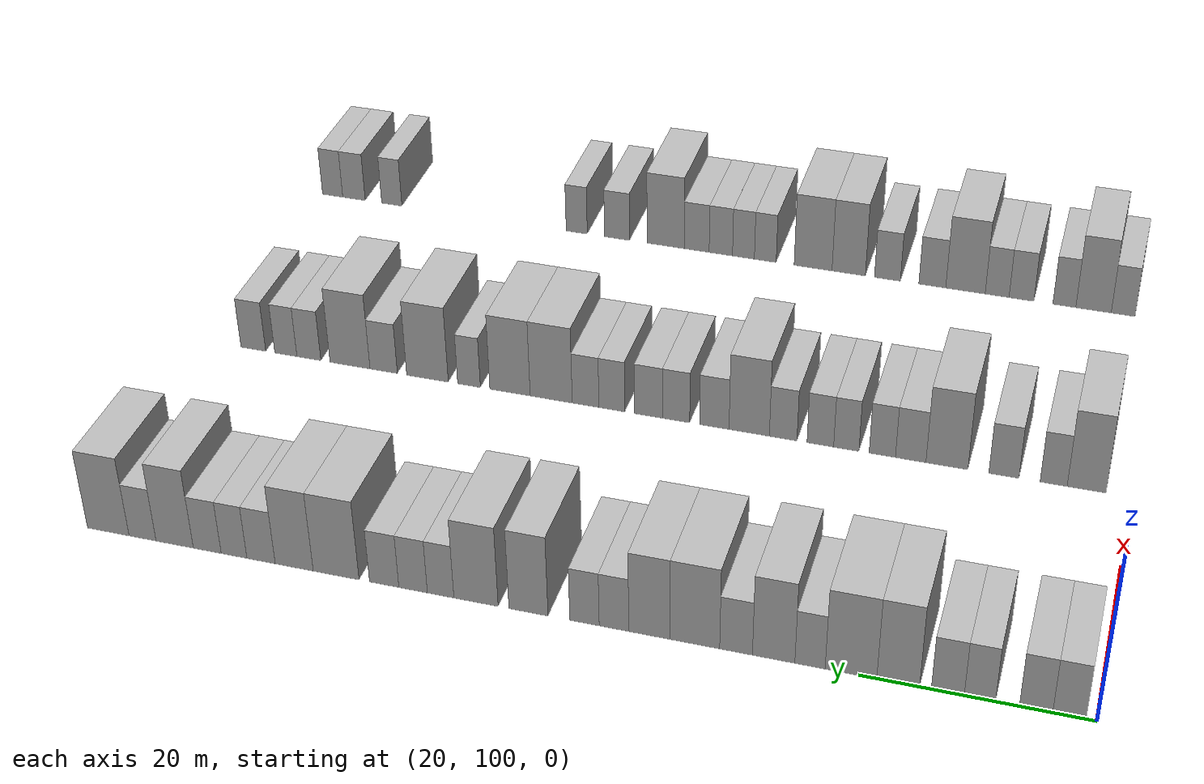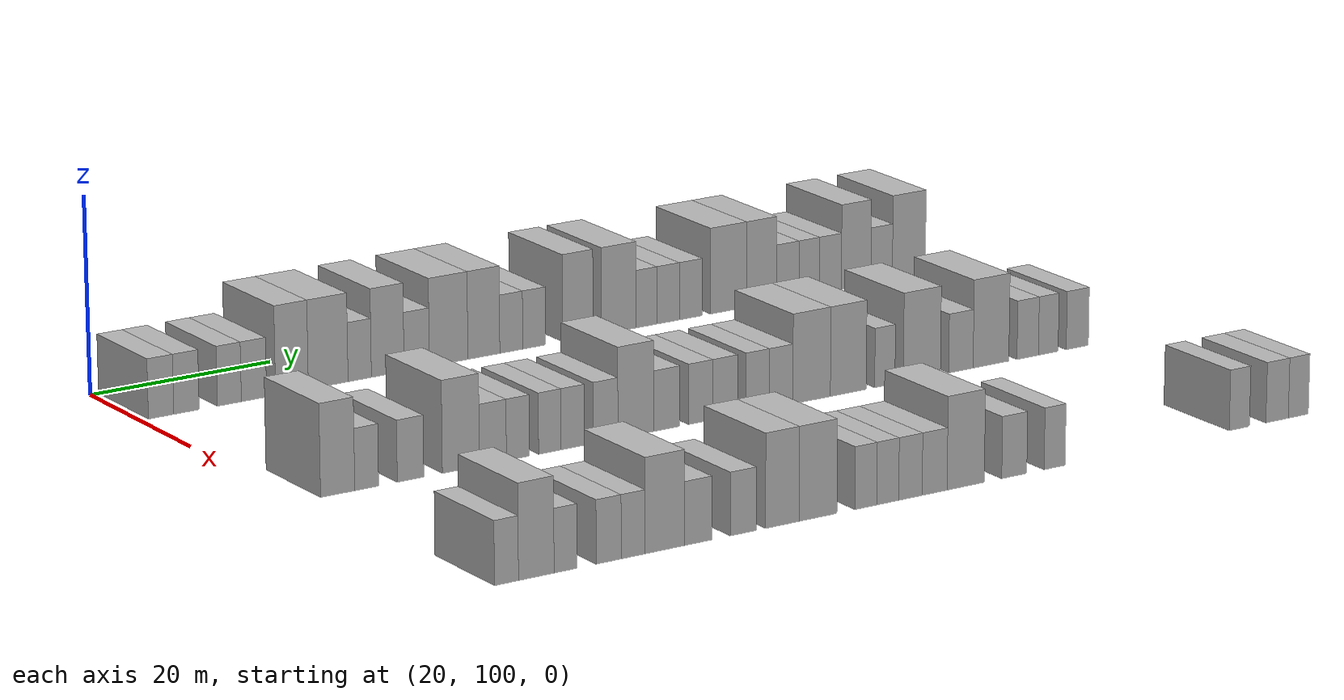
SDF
<sdf version="1.6">
 <world name="default">
  <model name="building_97">
   <static>1</static>
   <pose>25.0000 102.2993 0 0.000000 0.000000 0.000000</pose>
   <link name="link">
    <pose>0 0 3.00 0 0 0</pose>
    <collision name="collision"><geometry><box><size>10.0000 2.7549 6.0000</size></box></geometry></collision>
    <visual name="visual">
     <cast_shadows>0</cast_shadows>
     <geometry><box><size>10.0000 2.7549 6.0000</size></box></geometry>
     <material>
      <script>
       <uri>model://HANNAS_wall/materials/scripts</uri>
       <uri>model://HANNAS_wall/materials/textures</uri>
       <name>vrc/HANNAS_wall</name>
      </script>
     </material>
    </visual>
   </link>
  </model>
  <model name="building_98">
   <static>1</static>
   <pose>25.0000 105.0602 0 0.000000 0.000000 0.000000</pose>
   <link name="link">
    <pose>0 0 3.00 0 0 0</pose>
    <collision name="collision"><geometry><box><size>10.0000 2.7669 6.0000</size></box></geometry></collision>
    <visual name="visual">
     <cast_shadows>0</cast_shadows>
     <geometry><box><size>10.0000 2.7669 6.0000</size></box></geometry>
     <material>
      <script>
       <uri>model://HANNAS_wall/materials/scripts</uri>
       <uri>model://HANNAS_wall/materials/textures</uri>
       <name>vrc/HANNAS_wall</name>
      </script>
     </material>
    </visual>
   </link>
  </model>
  <model name="building_99">
   <static>1</static>
   <pose>25.0000 109.7584 0 0.000000 0.000000 0.000000</pose>
   <link name="link">
    <pose>0 0 3.00 0 0 0</pose>
    <collision name="collision"><geometry><box><size>10.0000 2.6295 6.0000</size></box></geometry></collision>
    <visual name="visual">
     <cast_shadows>0</cast_shadows>
     <geometry><box><size>10.0000 2.6295 6.0000</size></box></geometry>
     <material>
      <script>
       <uri>model://HANNAS_wall/materials/scripts</uri>
       <uri>model://HANNAS_wall/materials/textures</uri>
       <name>vrc/HANNAS_wall</name>
      </script>
     </material>
    </visual>
   </link>
  </model>
  <model name="building_100">
   <static>1</static>
   <pose>25.0000 112.4646 0 0.000000 0.000000 0.000000</pose>
   <link name="link">
    <pose>0 0 3.00 0 0 0</pose>
    <collision name="collision"><geometry><box><size>10.0000 2.7828 6.0000</size></box></geometry></collision>
    <visual name="visual">
     <cast_shadows>0</cast_shadows>
     <geometry><box><size>10.0000 2.7828 6.0000</size></box></geometry>
     <material>
      <script>
       <uri>model://HANNAS_wall/materials/scripts</uri>
       <uri>model://HANNAS_wall/materials/textures</uri>
       <name>vrc/HANNAS_wall</name>
      </script>
     </material>
    </visual>
   </link>
  </model>
  <model name="building_101">
   <static>1</static>
   <pose>25.0000 116.6821 0 0.000000 0.000000 0.000000</pose>
   <link name="link">
    <pose>0 0 4.50 0 0 0</pose>
    <collision name="collision"><geometry><box><size>10.0000 3.6521 9.0000</size></box></geometry></collision>
    <visual name="visual">
     <cast_shadows>0</cast_shadows>
     <geometry><box><size>10.0000 3.6521 9.0000</size></box></geometry>
     <material>
      <script>
       <uri>model://HANNAS_wall/materials/scripts</uri>
       <uri>model://HANNAS_wall/materials/textures</uri>
       <name>vrc/HANNAS_wall</name>
      </script>
     </material>
    </visual>
   </link>
  </model>
  <model name="building_102">
   <static>1</static>
   <pose>25.0000 120.7356 0 0.000000 0.000000 0.000000</pose>
   <link name="link">
    <pose>0 0 4.50 0 0 0</pose>
    <collision name="collision"><geometry><box><size>10.0000 4.4549 9.0000</size></box></geometry></collision>
    <visual name="visual">
     <cast_shadows>0</cast_shadows>
     <geometry><box><size>10.0000 4.4549 9.0000</size></box></geometry>
     <material>
      <script>
       <uri>model://HANNAS_wall/materials/scripts</uri>
       <uri>model://HANNAS_wall/materials/textures</uri>
       <name>vrc/HANNAS_wall</name>
      </script>
     </material>
    </visual>
   </link>
  </model>
  <model name="building_103">
   <static>1</static>
   <pose>25.0000 124.2792 0 0.000000 0.000000 0.000000</pose>
   <link name="link">
    <pose>0 0 3.00 0 0 0</pose>
    <collision name="collision"><geometry><box><size>10.0000 2.6323 6.0000</size></box></geometry></collision>
    <visual name="visual">
     <cast_shadows>0</cast_shadows>
     <geometry><box><size>10.0000 2.6323 6.0000</size></box></geometry>
     <material>
      <script>
       <uri>model://HANNAS_wall/materials/scripts</uri>
       <uri>model://HANNAS_wall/materials/textures</uri>
       <name>vrc/HANNAS_wall</name>
      </script>
     </material>
    </visual>
   </link>
  </model>
  <model name="building_104">
   <static>1</static>
   <pose>25.0000 127.4532 0 0.000000 0.000000 0.000000</pose>
   <link name="link">
    <pose>0 0 4.50 0 0 0</pose>
    <collision name="collision"><geometry><box><size>10.0000 3.7158 9.0000</size></box></geometry></collision>
    <visual name="visual">
     <cast_shadows>0</cast_shadows>
     <geometry><box><size>10.0000 3.7158 9.0000</size></box></geometry>
     <material>
      <script>
       <uri>model://HANNAS_wall/materials/scripts</uri>
       <uri>model://HANNAS_wall/materials/textures</uri>
       <name>vrc/HANNAS_wall</name>
      </script>
     </material>
    </visual>
   </link>
  </model>
  <model name="building_105">
   <static>1</static>
   <pose>25.0000 130.7575 0 0.000000 0.000000 0.000000</pose>
   <link name="link">
    <pose>0 0 3.00 0 0 0</pose>
    <collision name="collision"><geometry><box><size>10.0000 2.8928 6.0000</size></box></geometry></collision>
    <visual name="visual">
     <cast_shadows>0</cast_shadows>
     <geometry><box><size>10.0000 2.8928 6.0000</size></box></geometry>
     <material>
      <script>
       <uri>model://HANNAS_wall/materials/scripts</uri>
       <uri>model://HANNAS_wall/materials/textures</uri>
       <name>vrc/HANNAS_wall</name>
      </script>
     </material>
    </visual>
   </link>
  </model>
  <model name="building_106">
   <static>1</static>
   <pose>25.0000 134.4187 0 0.000000 0.000000 0.000000</pose>
   <link name="link">
    <pose>0 0 4.50 0 0 0</pose>
    <collision name="collision"><geometry><box><size>10.0000 4.4296 9.0000</size></box></geometry></collision>
    <visual name="visual">
     <cast_shadows>0</cast_shadows>
     <geometry><box><size>10.0000 4.4296 9.0000</size></box></geometry>
     <material>
      <script>
       <uri>model://HANNAS_wall/materials/scripts</uri>
       <uri>model://HANNAS_wall/materials/textures</uri>
       <name>vrc/HANNAS_wall</name>
      </script>
     </material>
    </visual>
   </link>
  </model>
  <model name="building_107">
   <static>1</static>
   <pose>25.0000 138.4829 0 0.000000 0.000000 0.000000</pose>
   <link name="link">
    <pose>0 0 4.50 0 0 0</pose>
    <collision name="collision"><geometry><box><size>10.0000 3.6987 9.0000</size></box></geometry></collision>
    <visual name="visual">
     <cast_shadows>0</cast_shadows>
     <geometry><box><size>10.0000 3.6987 9.0000</size></box></geometry>
     <material>
      <script>
       <uri>model://HANNAS_wall/materials/scripts</uri>
       <uri>model://HANNAS_wall/materials/textures</uri>
       <name>vrc/HANNAS_wall</name>
      </script>
     </material>
    </visual>
   </link>
  </model>
  <model name="building_108">
   <static>1</static>
   <pose>25.0000 141.6702 0 0.000000 0.000000 0.000000</pose>
   <link name="link">
    <pose>0 0 3.00 0 0 0</pose>
    <collision name="collision"><geometry><box><size>10.0000 2.6760 6.0000</size></box></geometry></collision>
    <visual name="visual">
     <cast_shadows>0</cast_shadows>
     <geometry><box><size>10.0000 2.6760 6.0000</size></box></geometry>
     <material>
      <script>
       <uri>model://HANNAS_wall/materials/scripts</uri>
       <uri>model://HANNAS_wall/materials/textures</uri>
       <name>vrc/HANNAS_wall</name>
      </script>
     </material>
    </visual>
   </link>
  </model>
  <model name="building_109">
   <static>1</static>
   <pose>25.0000 144.3447 0 0.000000 0.000000 0.000000</pose>
   <link name="link">
    <pose>0 0 3.00 0 0 0</pose>
    <collision name="collision"><geometry><box><size>10.0000 2.6730 6.0000</size></box></geometry></collision>
    <visual name="visual">
     <cast_shadows>0</cast_shadows>
     <geometry><box><size>10.0000 2.6730 6.0000</size></box></geometry>
     <material>
      <script>
       <uri>model://HANNAS_wall/materials/scripts</uri>
       <uri>model://HANNAS_wall/materials/textures</uri>
       <name>vrc/HANNAS_wall</name>
      </script>
     </material>
    </visual>
   </link>
  </model>
  <model name="building_110">
   <static>1</static>
   <pose>25.0000 149.4834 0 0.000000 0.000000 0.000000</pose>
   <link name="link">
    <pose>0 0 4.50 0 0 0</pose>
    <collision name="collision"><geometry><box><size>10.0000 3.6043 9.0000</size></box></geometry></collision>
    <visual name="visual">
     <cast_shadows>0</cast_shadows>
     <geometry><box><size>10.0000 3.6043 9.0000</size></box></geometry>
     <material>
      <script>
       <uri>model://HANNAS_wall/materials/scripts</uri>
       <uri>model://HANNAS_wall/materials/textures</uri>
       <name>vrc/HANNAS_wall</name>
      </script>
     </material>
    </visual>
   </link>
  </model>
  <model name="building_111">
   <static>1</static>
   <pose>25.0000 154.3491 0 0.000000 0.000000 0.000000</pose>
   <link name="link">
    <pose>0 0 4.50 0 0 0</pose>
    <collision name="collision"><geometry><box><size>10.0000 4.1273 9.0000</size></box></geometry></collision>
    <visual name="visual">
     <cast_shadows>0</cast_shadows>
     <geometry><box><size>10.0000 4.1273 9.0000</size></box></geometry>
     <material>
      <script>
       <uri>model://HANNAS_wall/materials/scripts</uri>
       <uri>model://HANNAS_wall/materials/textures</uri>
       <name>vrc/HANNAS_wall</name>
      </script>
     </material>
    </visual>
   </link>
  </model>
  <model name="building_112">
   <static>1</static>
   <pose>25.0000 157.6586 0 0.000000 0.000000 0.000000</pose>
   <link name="link">
    <pose>0 0 3.00 0 0 0</pose>
    <collision name="collision"><geometry><box><size>10.0000 2.4916 6.0000</size></box></geometry></collision>
    <visual name="visual">
     <cast_shadows>0</cast_shadows>
     <geometry><box><size>10.0000 2.4916 6.0000</size></box></geometry>
     <material>
      <script>
       <uri>model://HANNAS_wall/materials/scripts</uri>
       <uri>model://HANNAS_wall/materials/textures</uri>
       <name>vrc/HANNAS_wall</name>
      </script>
     </material>
    </visual>
   </link>
  </model>
  <model name="building_113">
   <static>1</static>
   <pose>25.0000 160.2516 0 0.000000 0.000000 0.000000</pose>
   <link name="link">
    <pose>0 0 3.00 0 0 0</pose>
    <collision name="collision"><geometry><box><size>10.0000 2.6944 6.0000</size></box></geometry></collision>
    <visual name="visual">
     <cast_shadows>0</cast_shadows>
     <geometry><box><size>10.0000 2.6944 6.0000</size></box></geometry>
     <material>
      <script>
       <uri>model://HANNAS_wall/materials/scripts</uri>
       <uri>model://HANNAS_wall/materials/textures</uri>
       <name>vrc/HANNAS_wall</name>
      </script>
     </material>
    </visual>
   </link>
  </model>
  <model name="building_114">
   <static>1</static>
   <pose>25.0000 162.9889 0 0.000000 0.000000 0.000000</pose>
   <link name="link">
    <pose>0 0 3.00 0 0 0</pose>
    <collision name="collision"><geometry><box><size>10.0000 2.7803 6.0000</size></box></geometry></collision>
    <visual name="visual">
     <cast_shadows>0</cast_shadows>
     <geometry><box><size>10.0000 2.7803 6.0000</size></box></geometry>
     <material>
      <script>
       <uri>model://HANNAS_wall/materials/scripts</uri>
       <uri>model://HANNAS_wall/materials/textures</uri>
       <name>vrc/HANNAS_wall</name>
      </script>
     </material>
    </visual>
   </link>
  </model>
  <model name="building_115">
   <static>1</static>
   <pose>25.0000 167.5828 0 0.000000 0.000000 0.000000</pose>
   <link name="link">
    <pose>0 0 4.50 0 0 0</pose>
    <collision name="collision"><geometry><box><size>10.0000 4.4075 9.0000</size></box></geometry></collision>
    <visual name="visual">
     <cast_shadows>0</cast_shadows>
     <geometry><box><size>10.0000 4.4075 9.0000</size></box></geometry>
     <material>
      <script>
       <uri>model://HANNAS_wall/materials/scripts</uri>
       <uri>model://HANNAS_wall/materials/textures</uri>
       <name>vrc/HANNAS_wall</name>
      </script>
     </material>
    </visual>
   </link>
  </model>
  <model name="building_116">
   <static>1</static>
   <pose>25.0000 171.6278 0 0.000000 0.000000 0.000000</pose>
   <link name="link">
    <pose>0 0 4.50 0 0 0</pose>
    <collision name="collision"><geometry><box><size>10.0000 3.6826 9.0000</size></box></geometry></collision>
    <visual name="visual">
     <cast_shadows>0</cast_shadows>
     <geometry><box><size>10.0000 3.6826 9.0000</size></box></geometry>
     <material>
      <script>
       <uri>model://HANNAS_wall/materials/scripts</uri>
       <uri>model://HANNAS_wall/materials/textures</uri>
       <name>vrc/HANNAS_wall</name>
      </script>
     </material>
    </visual>
   </link>
  </model>
  <model name="building_117">
   <static>1</static>
   <pose>25.0000 174.8508 0 0.000000 0.000000 0.000000</pose>
   <link name="link">
    <pose>0 0 3.00 0 0 0</pose>
    <collision name="collision"><geometry><box><size>10.0000 2.7632 6.0000</size></box></geometry></collision>
    <visual name="visual">
     <cast_shadows>0</cast_shadows>
     <geometry><box><size>10.0000 2.7632 6.0000</size></box></geometry>
     <material>
      <script>
       <uri>model://HANNAS_wall/materials/scripts</uri>
       <uri>model://HANNAS_wall/materials/textures</uri>
       <name>vrc/HANNAS_wall</name>
      </script>
     </material>
    </visual>
   </link>
  </model>
  <model name="building_118">
   <static>1</static>
   <pose>25.0000 177.4949 0 0.000000 0.000000 0.000000</pose>
   <link name="link">
    <pose>0 0 3.00 0 0 0</pose>
    <collision name="collision"><geometry><box><size>10.0000 2.5251 6.0000</size></box></geometry></collision>
    <visual name="visual">
     <cast_shadows>0</cast_shadows>
     <geometry><box><size>10.0000 2.5251 6.0000</size></box></geometry>
     <material>
      <script>
       <uri>model://HANNAS_wall/materials/scripts</uri>
       <uri>model://HANNAS_wall/materials/textures</uri>
       <name>vrc/HANNAS_wall</name>
      </script>
     </material>
    </visual>
   </link>
  </model>
  <model name="building_119">
   <static>1</static>
   <pose>25.0000 180.1338 0 0.000000 0.000000 0.000000</pose>
   <link name="link">
    <pose>0 0 3.00 0 0 0</pose>
    <collision name="collision"><geometry><box><size>10.0000 2.7527 6.0000</size></box></geometry></collision>
    <visual name="visual">
     <cast_shadows>0</cast_shadows>
     <geometry><box><size>10.0000 2.7527 6.0000</size></box></geometry>
     <material>
      <script>
       <uri>model://HANNAS_wall/materials/scripts</uri>
       <uri>model://HANNAS_wall/materials/textures</uri>
       <name>vrc/HANNAS_wall</name>
      </script>
     </material>
    </visual>
   </link>
  </model>
  <model name="building_120">
   <static>1</static>
   <pose>25.0000 183.3661 0 0.000000 0.000000 0.000000</pose>
   <link name="link">
    <pose>0 0 4.50 0 0 0</pose>
    <collision name="collision"><geometry><box><size>10.0000 3.7121 9.0000</size></box></geometry></collision>
    <visual name="visual">
     <cast_shadows>0</cast_shadows>
     <geometry><box><size>10.0000 3.7121 9.0000</size></box></geometry>
     <material>
      <script>
       <uri>model://HANNAS_wall/materials/scripts</uri>
       <uri>model://HANNAS_wall/materials/textures</uri>
       <name>vrc/HANNAS_wall</name>
      </script>
     </material>
    </visual>
   </link>
  </model>
  <model name="building_121">
   <static>1</static>
   <pose>25.0000 186.5716 0 0.000000 0.000000 0.000000</pose>
   <link name="link">
    <pose>0 0 3.00 0 0 0</pose>
    <collision name="collision"><geometry><box><size>10.0000 2.6988 6.0000</size></box></geometry></collision>
    <visual name="visual">
     <cast_shadows>0</cast_shadows>
     <geometry><box><size>10.0000 2.6988 6.0000</size></box></geometry>
     <material>
      <script>
       <uri>model://HANNAS_wall/materials/scripts</uri>
       <uri>model://HANNAS_wall/materials/textures</uri>
       <name>vrc/HANNAS_wall</name>
      </script>
     </material>
    </visual>
   </link>
  </model>
  <model name="building_122">
   <static>1</static>
   <pose>25.0000 190.0125 0 0.000000 0.000000 0.000000</pose>
   <link name="link">
    <pose>0 0 4.50 0 0 0</pose>
    <collision name="collision"><geometry><box><size>10.0000 4.1832 9.0000</size></box></geometry></collision>
    <visual name="visual">
     <cast_shadows>0</cast_shadows>
     <geometry><box><size>10.0000 4.1832 9.0000</size></box></geometry>
     <material>
      <script>
       <uri>model://HANNAS_wall/materials/scripts</uri>
       <uri>model://HANNAS_wall/materials/textures</uri>
       <name>vrc/HANNAS_wall</name>
      </script>
     </material>
    </visual>
   </link>
  </model>
  <model name="building_241">
   <static>1</static>
   <pose>55.0000 104.1972 0 0.000000 0.000000 0.000000</pose>
   <link name="link">
    <pose>0 0 4.50 0 0 0</pose>
    <collision name="collision"><geometry><box><size>10.0000 3.6310 9.0000</size></box></geometry></collision>
    <visual name="visual">
     <cast_shadows>0</cast_shadows>
     <geometry><box><size>10.0000 3.6310 9.0000</size></box></geometry>
     <material>
      <script>
       <uri>model://HANNAS_wall/materials/scripts</uri>
       <uri>model://HANNAS_wall/materials/textures</uri>
       <name>vrc/HANNAS_wall</name>
      </script>
     </material>
    </visual>
   </link>
  </model>
  <model name="building_242">
   <static>1</static>
   <pose>55.0000 107.2837 0 0.000000 0.000000 0.000000</pose>
   <link name="link">
    <pose>0 0 3.00 0 0 0</pose>
    <collision name="collision"><geometry><box><size>10.0000 2.5420 6.0000</size></box></geometry></collision>
    <visual name="visual">
     <cast_shadows>0</cast_shadows>
     <geometry><box><size>10.0000 2.5420 6.0000</size></box></geometry>
     <material>
      <script>
       <uri>model://HANNAS_wall/materials/scripts</uri>
       <uri>model://HANNAS_wall/materials/textures</uri>
       <name>vrc/HANNAS_wall</name>
      </script>
     </material>
    </visual>
   </link>
  </model>
  <model name="building_243">
   <static>1</static>
   <pose>55.0000 111.9834 0 0.000000 0.000000 0.000000</pose>
   <link name="link">
    <pose>0 0 3.00 0 0 0</pose>
    <collision name="collision"><geometry><box><size>10.0000 2.8573 6.0000</size></box></geometry></collision>
    <visual name="visual">
     <cast_shadows>0</cast_shadows>
     <geometry><box><size>10.0000 2.8573 6.0000</size></box></geometry>
     <material>
      <script>
       <uri>model://HANNAS_wall/materials/scripts</uri>
       <uri>model://HANNAS_wall/materials/textures</uri>
       <name>vrc/HANNAS_wall</name>
      </script>
     </material>
    </visual>
   </link>
  </model>
  <model name="building_244">
   <static>1</static>
   <pose>55.0000 117.4284 0 0.000000 0.000000 0.000000</pose>
   <link name="link">
    <pose>0 0 4.50 0 0 0</pose>
    <collision name="collision"><geometry><box><size>10.0000 4.0327 9.0000</size></box></geometry></collision>
    <visual name="visual">
     <cast_shadows>0</cast_shadows>
     <geometry><box><size>10.0000 4.0327 9.0000</size></box></geometry>
     <material>
      <script>
       <uri>model://HANNAS_wall/materials/scripts</uri>
       <uri>model://HANNAS_wall/materials/textures</uri>
       <name>vrc/HANNAS_wall</name>
      </script>
     </material>
    </visual>
   </link>
  </model>
  <model name="building_245">
   <static>1</static>
   <pose>55.0000 120.9205 0 0.000000 0.000000 0.000000</pose>
   <link name="link">
    <pose>0 0 3.00 0 0 0</pose>
    <collision name="collision"><geometry><box><size>10.0000 2.9514 6.0000</size></box></geometry></collision>
    <visual name="visual">
     <cast_shadows>0</cast_shadows>
     <geometry><box><size>10.0000 2.9514 6.0000</size></box></geometry>
     <material>
      <script>
       <uri>model://HANNAS_wall/materials/scripts</uri>
       <uri>model://HANNAS_wall/materials/textures</uri>
       <name>vrc/HANNAS_wall</name>
      </script>
     </material>
    </visual>
   </link>
  </model>
  <model name="building_246">
   <static>1</static>
   <pose>55.0000 123.6707 0 0.000000 0.000000 0.000000</pose>
   <link name="link">
    <pose>0 0 3.00 0 0 0</pose>
    <collision name="collision"><geometry><box><size>10.0000 2.5491 6.0000</size></box></geometry></collision>
    <visual name="visual">
     <cast_shadows>0</cast_shadows>
     <geometry><box><size>10.0000 2.5491 6.0000</size></box></geometry>
     <material>
      <script>
       <uri>model://HANNAS_wall/materials/scripts</uri>
       <uri>model://HANNAS_wall/materials/textures</uri>
       <name>vrc/HANNAS_wall</name>
      </script>
     </material>
    </visual>
   </link>
  </model>
  <model name="building_247">
   <static>1</static>
   <pose>55.0000 127.1866 0 0.000000 0.000000 0.000000</pose>
   <link name="link">
    <pose>0 0 3.00 0 0 0</pose>
    <collision name="collision"><geometry><box><size>10.0000 2.4827 6.0000</size></box></geometry></collision>
    <visual name="visual">
     <cast_shadows>0</cast_shadows>
     <geometry><box><size>10.0000 2.4827 6.0000</size></box></geometry>
     <material>
      <script>
       <uri>model://HANNAS_wall/materials/scripts</uri>
       <uri>model://HANNAS_wall/materials/textures</uri>
       <name>vrc/HANNAS_wall</name>
      </script>
     </material>
    </visual>
   </link>
  </model>
  <model name="building_248">
   <static>1</static>
   <pose>55.0000 129.7366 0 0.000000 0.000000 0.000000</pose>
   <link name="link">
    <pose>0 0 3.00 0 0 0</pose>
    <collision name="collision"><geometry><box><size>10.0000 2.6174 6.0000</size></box></geometry></collision>
    <visual name="visual">
     <cast_shadows>0</cast_shadows>
     <geometry><box><size>10.0000 2.6174 6.0000</size></box></geometry>
     <material>
      <script>
       <uri>model://HANNAS_wall/materials/scripts</uri>
       <uri>model://HANNAS_wall/materials/textures</uri>
       <name>vrc/HANNAS_wall</name>
      </script>
     </material>
    </visual>
   </link>
  </model>
  <model name="building_249">
   <static>1</static>
   <pose>55.0000 133.4147 0 0.000000 0.000000 0.000000</pose>
   <link name="link">
    <pose>0 0 3.00 0 0 0</pose>
    <collision name="collision"><geometry><box><size>10.0000 2.7388 6.0000</size></box></geometry></collision>
    <visual name="visual">
     <cast_shadows>0</cast_shadows>
     <geometry><box><size>10.0000 2.7388 6.0000</size></box></geometry>
     <material>
      <script>
       <uri>model://HANNAS_wall/materials/scripts</uri>
       <uri>model://HANNAS_wall/materials/textures</uri>
       <name>vrc/HANNAS_wall</name>
      </script>
     </material>
    </visual>
   </link>
  </model>
  <model name="building_250">
   <static>1</static>
   <pose>55.0000 136.8019 0 0.000000 0.000000 0.000000</pose>
   <link name="link">
    <pose>0 0 4.50 0 0 0</pose>
    <collision name="collision"><geometry><box><size>10.0000 4.0355 9.0000</size></box></geometry></collision>
    <visual name="visual">
     <cast_shadows>0</cast_shadows>
     <geometry><box><size>10.0000 4.0355 9.0000</size></box></geometry>
     <material>
      <script>
       <uri>model://HANNAS_wall/materials/scripts</uri>
       <uri>model://HANNAS_wall/materials/textures</uri>
       <name>vrc/HANNAS_wall</name>
      </script>
     </material>
    </visual>
   </link>
  </model>
  <model name="building_251">
   <static>1</static>
   <pose>55.0000 140.3006 0 0.000000 0.000000 0.000000</pose>
   <link name="link">
    <pose>0 0 3.00 0 0 0</pose>
    <collision name="collision"><geometry><box><size>10.0000 2.9618 6.0000</size></box></geometry></collision>
    <visual name="visual">
     <cast_shadows>0</cast_shadows>
     <geometry><box><size>10.0000 2.9618 6.0000</size></box></geometry>
     <material>
      <script>
       <uri>model://HANNAS_wall/materials/scripts</uri>
       <uri>model://HANNAS_wall/materials/textures</uri>
       <name>vrc/HANNAS_wall</name>
      </script>
     </material>
    </visual>
   </link>
  </model>
  <model name="building_252">
   <static>1</static>
   <pose>55.0000 144.1662 0 0.000000 0.000000 0.000000</pose>
   <link name="link">
    <pose>0 0 3.00 0 0 0</pose>
    <collision name="collision"><geometry><box><size>10.0000 2.7696 6.0000</size></box></geometry></collision>
    <visual name="visual">
     <cast_shadows>0</cast_shadows>
     <geometry><box><size>10.0000 2.7696 6.0000</size></box></geometry>
     <material>
      <script>
       <uri>model://HANNAS_wall/materials/scripts</uri>
       <uri>model://HANNAS_wall/materials/textures</uri>
       <name>vrc/HANNAS_wall</name>
      </script>
     </material>
    </visual>
   </link>
  </model>
  <model name="building_253">
   <static>1</static>
   <pose>55.0000 146.9723 0 0.000000 0.000000 0.000000</pose>
   <link name="link">
    <pose>0 0 3.00 0 0 0</pose>
    <collision name="collision"><geometry><box><size>10.0000 2.8426 6.0000</size></box></geometry></collision>
    <visual name="visual">
     <cast_shadows>0</cast_shadows>
     <geometry><box><size>10.0000 2.8426 6.0000</size></box></geometry>
     <material>
      <script>
       <uri>model://HANNAS_wall/materials/scripts</uri>
       <uri>model://HANNAS_wall/materials/textures</uri>
       <name>vrc/HANNAS_wall</name>
      </script>
     </material>
    </visual>
   </link>
  </model>
  <model name="building_254">
   <static>1</static>
   <pose>55.0000 150.7240 0 0.000000 0.000000 0.000000</pose>
   <link name="link">
    <pose>0 0 3.00 0 0 0</pose>
    <collision name="collision"><geometry><box><size>10.0000 2.6609 6.0000</size></box></geometry></collision>
    <visual name="visual">
     <cast_shadows>0</cast_shadows>
     <geometry><box><size>10.0000 2.6609 6.0000</size></box></geometry>
     <material>
      <script>
       <uri>model://HANNAS_wall/materials/scripts</uri>
       <uri>model://HANNAS_wall/materials/textures</uri>
       <name>vrc/HANNAS_wall</name>
      </script>
     </material>
    </visual>
   </link>
  </model>
  <model name="building_255">
   <static>1</static>
   <pose>55.0000 153.4331 0 0.000000 0.000000 0.000000</pose>
   <link name="link">
    <pose>0 0 3.00 0 0 0</pose>
    <collision name="collision"><geometry><box><size>10.0000 2.7572 6.0000</size></box></geometry></collision>
    <visual name="visual">
     <cast_shadows>0</cast_shadows>
     <geometry><box><size>10.0000 2.7572 6.0000</size></box></geometry>
     <material>
      <script>
       <uri>model://HANNAS_wall/materials/scripts</uri>
       <uri>model://HANNAS_wall/materials/textures</uri>
       <name>vrc/HANNAS_wall</name>
      </script>
     </material>
    </visual>
   </link>
  </model>
  <model name="building_256">
   <static>1</static>
   <pose>55.0000 157.0059 0 0.000000 0.000000 0.000000</pose>
   <link name="link">
    <pose>0 0 4.50 0 0 0</pose>
    <collision name="collision"><geometry><box><size>10.0000 4.3884 9.0000</size></box></geometry></collision>
    <visual name="visual">
     <cast_shadows>0</cast_shadows>
     <geometry><box><size>10.0000 4.3884 9.0000</size></box></geometry>
     <material>
      <script>
       <uri>model://HANNAS_wall/materials/scripts</uri>
       <uri>model://HANNAS_wall/materials/textures</uri>
       <name>vrc/HANNAS_wall</name>
      </script>
     </material>
    </visual>
   </link>
  </model>
  <model name="building_257">
   <static>1</static>
   <pose>55.0000 161.3180 0 0.000000 0.000000 0.000000</pose>
   <link name="link">
    <pose>0 0 4.50 0 0 0</pose>
    <collision name="collision"><geometry><box><size>10.0000 4.2357 9.0000</size></box></geometry></collision>
    <visual name="visual">
     <cast_shadows>0</cast_shadows>
     <geometry><box><size>10.0000 4.2357 9.0000</size></box></geometry>
     <material>
      <script>
       <uri>model://HANNAS_wall/materials/scripts</uri>
       <uri>model://HANNAS_wall/materials/textures</uri>
       <name>vrc/HANNAS_wall</name>
      </script>
     </material>
    </visual>
   </link>
  </model>
  <model name="building_258">
   <static>1</static>
   <pose>55.0000 165.6407 0 0.000000 0.000000 0.000000</pose>
   <link name="link">
    <pose>0 0 3.00 0 0 0</pose>
    <collision name="collision"><geometry><box><size>10.0000 2.4098 6.0000</size></box></geometry></collision>
    <visual name="visual">
     <cast_shadows>0</cast_shadows>
     <geometry><box><size>10.0000 2.4098 6.0000</size></box></geometry>
     <material>
      <script>
       <uri>model://HANNAS_wall/materials/scripts</uri>
       <uri>model://HANNAS_wall/materials/textures</uri>
       <name>vrc/HANNAS_wall</name>
      </script>
     </material>
    </visual>
   </link>
  </model>
  <model name="building_259">
   <static>1</static>
   <pose>55.0000 170.0697 0 0.000000 0.000000 0.000000</pose>
   <link name="link">
    <pose>0 0 4.50 0 0 0</pose>
    <collision name="collision"><geometry><box><size>10.0000 4.4481 9.0000</size></box></geometry></collision>
    <visual name="visual">
     <cast_shadows>0</cast_shadows>
     <geometry><box><size>10.0000 4.4481 9.0000</size></box></geometry>
     <material>
      <script>
       <uri>model://HANNAS_wall/materials/scripts</uri>
       <uri>model://HANNAS_wall/materials/textures</uri>
       <name>vrc/HANNAS_wall</name>
      </script>
     </material>
    </visual>
   </link>
  </model>
  <model name="building_260">
   <static>1</static>
   <pose>55.0000 174.7714 0 0.000000 0.000000 0.000000</pose>
   <link name="link">
    <pose>0 0 3.00 0 0 0</pose>
    <collision name="collision"><geometry><box><size>10.0000 2.9554 6.0000</size></box></geometry></collision>
    <visual name="visual">
     <cast_shadows>0</cast_shadows>
     <geometry><box><size>10.0000 2.9554 6.0000</size></box></geometry>
     <material>
      <script>
       <uri>model://HANNAS_wall/materials/scripts</uri>
       <uri>model://HANNAS_wall/materials/textures</uri>
       <name>vrc/HANNAS_wall</name>
      </script>
     </material>
    </visual>
   </link>
  </model>
  <model name="building_261">
   <static>1</static>
   <pose>55.0000 178.4216 0 0.000000 0.000000 0.000000</pose>
   <link name="link">
    <pose>0 0 4.50 0 0 0</pose>
    <collision name="collision"><geometry><box><size>10.0000 4.3450 9.0000</size></box></geometry></collision>
    <visual name="visual">
     <cast_shadows>0</cast_shadows>
     <geometry><box><size>10.0000 4.3450 9.0000</size></box></geometry>
     <material>
      <script>
       <uri>model://HANNAS_wall/materials/scripts</uri>
       <uri>model://HANNAS_wall/materials/textures</uri>
       <name>vrc/HANNAS_wall</name>
      </script>
     </material>
    </visual>
   </link>
  </model>
  <model name="building_262">
   <static>1</static>
   <pose>55.0000 182.9109 0 0.000000 0.000000 0.000000</pose>
   <link name="link">
    <pose>0 0 3.00 0 0 0</pose>
    <collision name="collision"><geometry><box><size>10.0000 2.6336 6.0000</size></box></geometry></collision>
    <visual name="visual">
     <cast_shadows>0</cast_shadows>
     <geometry><box><size>10.0000 2.6336 6.0000</size></box></geometry>
     <material>
      <script>
       <uri>model://HANNAS_wall/materials/scripts</uri>
       <uri>model://HANNAS_wall/materials/textures</uri>
       <name>vrc/HANNAS_wall</name>
      </script>
     </material>
    </visual>
   </link>
  </model>
  <model name="building_263">
   <static>1</static>
   <pose>55.0000 185.4453 0 0.000000 0.000000 0.000000</pose>
   <link name="link">
    <pose>0 0 3.00 0 0 0</pose>
    <collision name="collision"><geometry><box><size>10.0000 2.4354 6.0000</size></box></geometry></collision>
    <visual name="visual">
     <cast_shadows>0</cast_shadows>
     <geometry><box><size>10.0000 2.4354 6.0000</size></box></geometry>
     <material>
      <script>
       <uri>model://HANNAS_wall/materials/scripts</uri>
       <uri>model://HANNAS_wall/materials/textures</uri>
       <name>vrc/HANNAS_wall</name>
      </script>
     </material>
    </visual>
   </link>
  </model>
  <model name="building_264">
   <static>1</static>
   <pose>55.0000 189.0334 0 0.000000 0.000000 0.000000</pose>
   <link name="link">
    <pose>0 0 3.00 0 0 0</pose>
    <collision name="collision"><geometry><box><size>10.0000 2.7407 6.0000</size></box></geometry></collision>
    <visual name="visual">
     <cast_shadows>0</cast_shadows>
     <geometry><box><size>10.0000 2.7407 6.0000</size></box></geometry>
     <material>
      <script>
       <uri>model://HANNAS_wall/materials/scripts</uri>
       <uri>model://HANNAS_wall/materials/textures</uri>
       <name>vrc/HANNAS_wall</name>
      </script>
     </material>
    </visual>
   </link>
  </model>
  <model name="building_376">
   <static>1</static>
   <pose>85.0000 103.7011 0 0.000000 0.000000 0.000000</pose>
   <link name="link">
    <pose>0 0 3.00 0 0 0</pose>
    <collision name="collision"><geometry><box><size>10.0000 2.4765 6.0000</size></box></geometry></collision>
    <visual name="visual">
     <cast_shadows>0</cast_shadows>
     <geometry><box><size>10.0000 2.4765 6.0000</size></box></geometry>
     <material>
      <script>
       <uri>model://HANNAS_wall/materials/scripts</uri>
       <uri>model://HANNAS_wall/materials/textures</uri>
       <name>vrc/HANNAS_wall</name>
      </script>
     </material>
    </visual>
   </link>
  </model>
  <model name="building_377">
   <static>1</static>
   <pose>85.0000 106.7867 0 0.000000 0.000000 0.000000</pose>
   <link name="link">
    <pose>0 0 4.50 0 0 0</pose>
    <collision name="collision"><geometry><box><size>10.0000 3.6948 9.0000</size></box></geometry></collision>
    <visual name="visual">
     <cast_shadows>0</cast_shadows>
     <geometry><box><size>10.0000 3.6948 9.0000</size></box></geometry>
     <material>
      <script>
       <uri>model://HANNAS_wall/materials/scripts</uri>
       <uri>model://HANNAS_wall/materials/textures</uri>
       <name>vrc/HANNAS_wall</name>
      </script>
     </material>
    </visual>
   </link>
  </model>
  <model name="building_378">
   <static>1</static>
   <pose>85.0000 109.8363 0 0.000000 0.000000 0.000000</pose>
   <link name="link">
    <pose>0 0 3.00 0 0 0</pose>
    <collision name="collision"><geometry><box><size>10.0000 2.4043 6.0000</size></box></geometry></collision>
    <visual name="visual">
     <cast_shadows>0</cast_shadows>
     <geometry><box><size>10.0000 2.4043 6.0000</size></box></geometry>
     <material>
      <script>
       <uri>model://HANNAS_wall/materials/scripts</uri>
       <uri>model://HANNAS_wall/materials/textures</uri>
       <name>vrc/HANNAS_wall</name>
      </script>
     </material>
    </visual>
   </link>
  </model>
  <model name="building_379">
   <static>1</static>
   <pose>85.0000 114.3556 0 0.000000 0.000000 0.000000</pose>
   <link name="link">
    <pose>0 0 3.00 0 0 0</pose>
    <collision name="collision"><geometry><box><size>10.0000 2.6344 6.0000</size></box></geometry></collision>
    <visual name="visual">
     <cast_shadows>0</cast_shadows>
     <geometry><box><size>10.0000 2.6344 6.0000</size></box></geometry>
     <material>
      <script>
       <uri>model://HANNAS_wall/materials/scripts</uri>
       <uri>model://HANNAS_wall/materials/textures</uri>
       <name>vrc/HANNAS_wall</name>
      </script>
     </material>
    </visual>
   </link>
  </model>
  <model name="building_380">
   <static>1</static>
   <pose>85.0000 116.9452 0 0.000000 0.000000 0.000000</pose>
   <link name="link">
    <pose>0 0 3.00 0 0 0</pose>
    <collision name="collision"><geometry><box><size>10.0000 2.5447 6.0000</size></box></geometry></collision>
    <visual name="visual">
     <cast_shadows>0</cast_shadows>
     <geometry><box><size>10.0000 2.5447 6.0000</size></box></geometry>
     <material>
      <script>
       <uri>model://HANNAS_wall/materials/scripts</uri>
       <uri>model://HANNAS_wall/materials/textures</uri>
       <name>vrc/HANNAS_wall</name>
      </script>
     </material>
    </visual>
   </link>
  </model>
  <model name="building_381">
   <static>1</static>
   <pose>85.0000 120.3283 0 0.000000 0.000000 0.000000</pose>
   <link name="link">
    <pose>0 0 4.50 0 0 0</pose>
    <collision name="collision"><geometry><box><size>10.0000 4.2215 9.0000</size></box></geometry></collision>
    <visual name="visual">
     <cast_shadows>0</cast_shadows>
     <geometry><box><size>10.0000 4.2215 9.0000</size></box></geometry>
     <material>
      <script>
       <uri>model://HANNAS_wall/materials/scripts</uri>
       <uri>model://HANNAS_wall/materials/textures</uri>
       <name>vrc/HANNAS_wall</name>
      </script>
     </material>
    </visual>
   </link>
  </model>
  <model name="building_382">
   <static>1</static>
   <pose>85.0000 123.8874 0 0.000000 0.000000 0.000000</pose>
   <link name="link">
    <pose>0 0 3.00 0 0 0</pose>
    <collision name="collision"><geometry><box><size>10.0000 2.8968 6.0000</size></box></geometry></collision>
    <visual name="visual">
     <cast_shadows>0</cast_shadows>
     <geometry><box><size>10.0000 2.8968 6.0000</size></box></geometry>
     <material>
      <script>
       <uri>model://HANNAS_wall/materials/scripts</uri>
       <uri>model://HANNAS_wall/materials/textures</uri>
       <name>vrc/HANNAS_wall</name>
      </script>
     </material>
    </visual>
   </link>
  </model>
  <model name="building_383">
   <static>1</static>
   <pose>85.0000 128.7435 0 0.000000 0.000000 0.000000</pose>
   <link name="link">
    <pose>0 0 3.00 0 0 0</pose>
    <collision name="collision"><geometry><box><size>10.0000 2.8152 6.0000</size></box></geometry></collision>
    <visual name="visual">
     <cast_shadows>0</cast_shadows>
     <geometry><box><size>10.0000 2.8152 6.0000</size></box></geometry>
     <material>
      <script>
       <uri>model://HANNAS_wall/materials/scripts</uri>
       <uri>model://HANNAS_wall/materials/textures</uri>
       <name>vrc/HANNAS_wall</name>
      </script>
     </material>
    </visual>
   </link>
  </model>
  <model name="building_384">
   <static>1</static>
   <pose>85.0000 132.9811 0 0.000000 0.000000 0.000000</pose>
   <link name="link">
    <pose>0 0 4.50 0 0 0</pose>
    <collision name="collision"><geometry><box><size>10.0000 3.6599 9.0000</size></box></geometry></collision>
    <visual name="visual">
     <cast_shadows>0</cast_shadows>
     <geometry><box><size>10.0000 3.6599 9.0000</size></box></geometry>
     <material>
      <script>
       <uri>model://HANNAS_wall/materials/scripts</uri>
       <uri>model://HANNAS_wall/materials/textures</uri>
       <name>vrc/HANNAS_wall</name>
      </script>
     </material>
    </visual>
   </link>
  </model>
  <model name="building_385">
   <static>1</static>
   <pose>85.0000 136.8992 0 0.000000 0.000000 0.000000</pose>
   <link name="link">
    <pose>0 0 4.50 0 0 0</pose>
    <collision name="collision"><geometry><box><size>10.0000 4.1763 9.0000</size></box></geometry></collision>
    <visual name="visual">
     <cast_shadows>0</cast_shadows>
     <geometry><box><size>10.0000 4.1763 9.0000</size></box></geometry>
     <material>
      <script>
       <uri>model://HANNAS_wall/materials/scripts</uri>
       <uri>model://HANNAS_wall/materials/textures</uri>
       <name>vrc/HANNAS_wall</name>
      </script>
     </material>
    </visual>
   </link>
  </model>
  <model name="building_386">
   <static>1</static>
   <pose>85.0000 142.2031 0 0.000000 0.000000 0.000000</pose>
   <link name="link">
    <pose>0 0 3.00 0 0 0</pose>
    <collision name="collision"><geometry><box><size>10.0000 2.4316 6.0000</size></box></geometry></collision>
    <visual name="visual">
     <cast_shadows>0</cast_shadows>
     <geometry><box><size>10.0000 2.4316 6.0000</size></box></geometry>
     <material>
      <script>
       <uri>model://HANNAS_wall/materials/scripts</uri>
       <uri>model://HANNAS_wall/materials/textures</uri>
       <name>vrc/HANNAS_wall</name>
      </script>
     </material>
    </visual>
   </link>
  </model>
  <model name="building_387">
   <static>1</static>
   <pose>85.0000 144.6435 0 0.000000 0.000000 0.000000</pose>
   <link name="link">
    <pose>0 0 3.00 0 0 0</pose>
    <collision name="collision"><geometry><box><size>10.0000 2.4492 6.0000</size></box></geometry></collision>
    <visual name="visual">
     <cast_shadows>0</cast_shadows>
     <geometry><box><size>10.0000 2.4492 6.0000</size></box></geometry>
     <material>
      <script>
       <uri>model://HANNAS_wall/materials/scripts</uri>
       <uri>model://HANNAS_wall/materials/textures</uri>
       <name>vrc/HANNAS_wall</name>
      </script>
     </material>
    </visual>
   </link>
  </model>
  <model name="building_388">
   <static>1</static>
   <pose>85.0000 147.1850 0 0.000000 0.000000 0.000000</pose>
   <link name="link">
    <pose>0 0 3.00 0 0 0</pose>
    <collision name="collision"><geometry><box><size>10.0000 2.6337 6.0000</size></box></geometry></collision>
    <visual name="visual">
     <cast_shadows>0</cast_shadows>
     <geometry><box><size>10.0000 2.6337 6.0000</size></box></geometry>
     <material>
      <script>
       <uri>model://HANNAS_wall/materials/scripts</uri>
       <uri>model://HANNAS_wall/materials/textures</uri>
       <name>vrc/HANNAS_wall</name>
      </script>
     </material>
    </visual>
   </link>
  </model>
  <model name="building_389">
   <static>1</static>
   <pose>85.0000 149.9082 0 0.000000 0.000000 0.000000</pose>
   <link name="link">
    <pose>0 0 3.00 0 0 0</pose>
    <collision name="collision"><geometry><box><size>10.0000 2.8127 6.0000</size></box></geometry></collision>
    <visual name="visual">
     <cast_shadows>0</cast_shadows>
     <geometry><box><size>10.0000 2.8127 6.0000</size></box></geometry>
     <material>
      <script>
       <uri>model://HANNAS_wall/materials/scripts</uri>
       <uri>model://HANNAS_wall/materials/textures</uri>
       <name>vrc/HANNAS_wall</name>
      </script>
     </material>
    </visual>
   </link>
  </model>
  <model name="building_390">
   <static>1</static>
   <pose>85.0000 153.4304 0 0.000000 0.000000 0.000000</pose>
   <link name="link">
    <pose>0 0 4.50 0 0 0</pose>
    <collision name="collision"><geometry><box><size>10.0000 4.2317 9.0000</size></box></geometry></collision>
    <visual name="visual">
     <cast_shadows>0</cast_shadows>
     <geometry><box><size>10.0000 4.2317 9.0000</size></box></geometry>
     <material>
      <script>
       <uri>model://HANNAS_wall/materials/scripts</uri>
       <uri>model://HANNAS_wall/materials/textures</uri>
       <name>vrc/HANNAS_wall</name>
      </script>
     </material>
    </visual>
   </link>
  </model>
  <model name="building_391">
   <static>1</static>
   <pose>85.0000 158.9858 0 0.000000 0.000000 0.000000</pose>
   <link name="link">
    <pose>0 0 3.00 0 0 0</pose>
    <collision name="collision"><geometry><box><size>10.0000 2.8793 6.0000</size></box></geometry></collision>
    <visual name="visual">
     <cast_shadows>0</cast_shadows>
     <geometry><box><size>10.0000 2.8793 6.0000</size></box></geometry>
     <material>
      <script>
       <uri>model://HANNAS_wall/materials/scripts</uri>
       <uri>model://HANNAS_wall/materials/textures</uri>
       <name>vrc/HANNAS_wall</name>
      </script>
     </material>
    </visual>
   </link>
  </model>
  <model name="building_392">
   <static>1</static>
   <pose>85.0000 163.6443 0 0.000000 0.000000 0.000000</pose>
   <link name="link">
    <pose>0 0 3.00 0 0 0</pose>
    <collision name="collision"><geometry><box><size>10.0000 2.4377 6.0000</size></box></geometry></collision>
    <visual name="visual">
     <cast_shadows>0</cast_shadows>
     <geometry><box><size>10.0000 2.4377 6.0000</size></box></geometry>
     <material>
      <script>
       <uri>model://HANNAS_wall/materials/scripts</uri>
       <uri>model://HANNAS_wall/materials/textures</uri>
       <name>vrc/HANNAS_wall</name>
      </script>
     </material>
    </visual>
   </link>
  </model>
  <model name="building_393">
   <static>1</static>
   <pose>85.0000 185.5207 0 0.000000 0.000000 0.000000</pose>
   <link name="link">
    <pose>0 0 3.00 0 0 0</pose>
    <collision name="collision"><geometry><box><size>10.0000 2.4384 6.0000</size></box></geometry></collision>
    <visual name="visual">
     <cast_shadows>0</cast_shadows>
     <geometry><box><size>10.0000 2.4384 6.0000</size></box></geometry>
     <material>
      <script>
       <uri>model://HANNAS_wall/materials/scripts</uri>
       <uri>model://HANNAS_wall/materials/textures</uri>
       <name>vrc/HANNAS_wall</name>
      </script>
     </material>
    </visual>
   </link>
  </model>
  <model name="building_394">
   <static>1</static>
   <pose>85.0000 190.1056 0 0.000000 0.000000 0.000000</pose>
   <link name="link">
    <pose>0 0 3.00 0 0 0</pose>
    <collision name="collision"><geometry><box><size>10.0000 2.7314 6.0000</size></box></geometry></collision>
    <visual name="visual">
     <cast_shadows>0</cast_shadows>
     <geometry><box><size>10.0000 2.7314 6.0000</size></box></geometry>
     <material>
      <script>
       <uri>model://HANNAS_wall/materials/scripts</uri>
       <uri>model://HANNAS_wall/materials/textures</uri>
       <name>vrc/HANNAS_wall</name>
      </script>
     </material>
    </visual>
   </link>
  </model>
  <model name="building_395">
   <static>1</static>
   <pose>85.0000 192.6998 0 0.000000 0.000000 0.000000</pose>
   <link name="link">
    <pose>0 0 3.00 0 0 0</pose>
    <collision name="collision"><geometry><box><size>10.0000 2.4570 6.0000</size></box></geometry></collision>
    <visual name="visual">
     <cast_shadows>0</cast_shadows>
     <geometry><box><size>10.0000 2.4570 6.0000</size></box></geometry>
     <material>
      <script>
       <uri>model://HANNAS_wall/materials/scripts</uri>
       <uri>model://HANNAS_wall/materials/textures</uri>
       <name>vrc/HANNAS_wall</name>
      </script>
     </material>
    </visual>
   </link>
  </model>
 </world>
</sdf>
